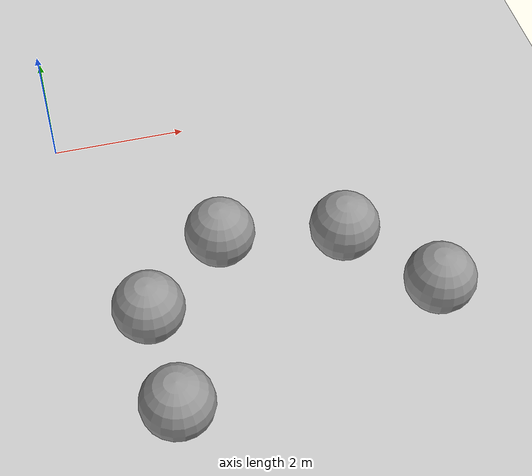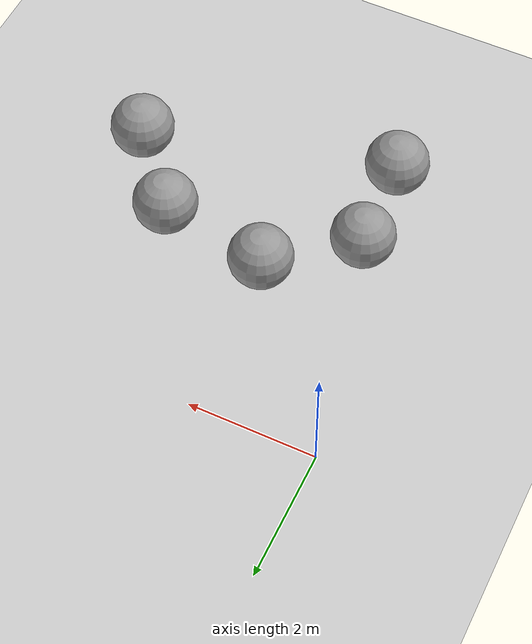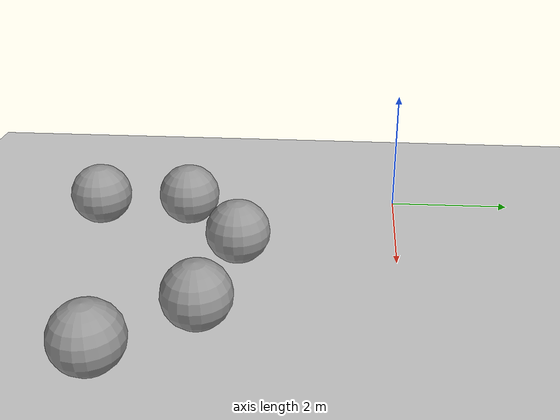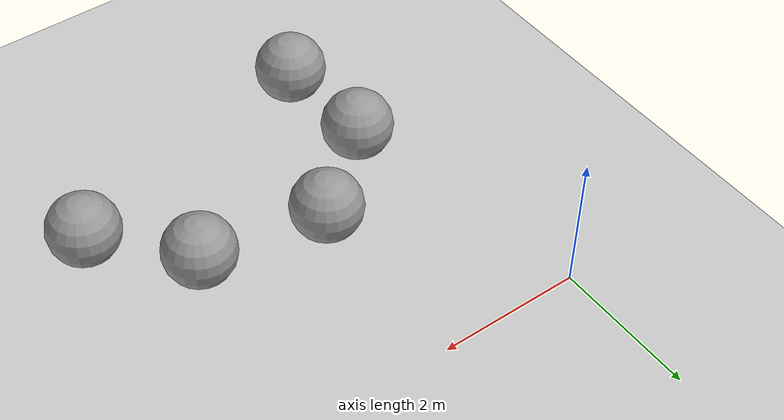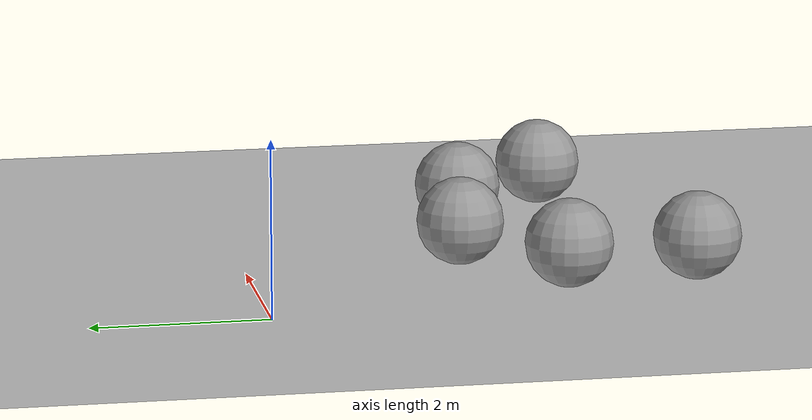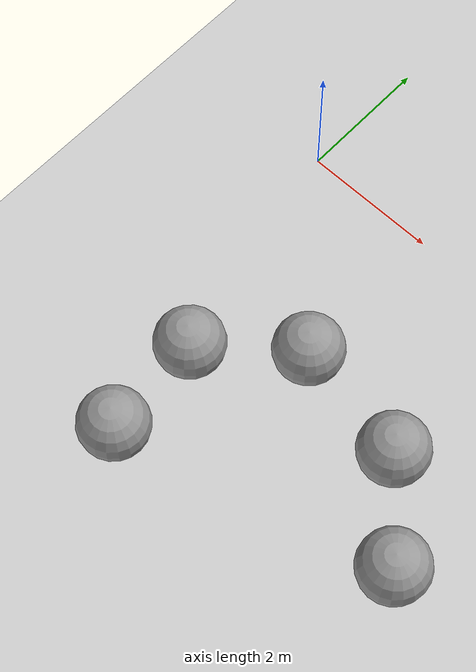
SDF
<sdf version="1.7">
 <world name="default">
  <model name="ground_plane">
   <static>1</static>
   <link name="link">
    <collision name="collision">
     <geometry><plane><normal>0 0 1</normal><size>100 100</size></plane></geometry>
     <surface>
      <contact><collide_bitmask>65535</collide_bitmask></contact>
      <friction><ode><mu>100</mu><mu2>50</mu2></ode></friction>
     </surface>
    </collision>
    <visual name="visual">
     <cast_shadows>0</cast_shadows>
     <geometry><plane><normal>0 0 1</normal><size>100 100</size></plane></geometry>
     <material>
      <script><uri>file://media/materials/scripts/gazebo.material</uri><name>Gazebo/Grey</name></script>
     </material>
    </visual>
   </link>
  </model>
  <light name="sun" type="directional">
   <pose>0 0 10 0 -0 0</pose>
   <diffuse>0.8 0.8 0.8 1</diffuse>
   <specular>0.2 0.2 0.2 1</specular>
   <attenuation>
    <range>1000</range>
    <constant>0.9</constant>
    <linear>0.01</linear>
    <quadratic>0.001</quadratic>
   </attenuation>
   <direction>-0.5 0.1 -0.9</direction>
   <spot><inner_angle>0</inner_angle><outer_angle>0</outer_angle><falloff>0</falloff></spot>
  </light>
  <gravity>0 0 -9.8</gravity>
  <magnetic_field>6e-06 2.3e-05 -4.2e-05</magnetic_field>
  <atmosphere type="adiabatic"/>
  <physics type="ode">
   <max_step_size>0.001</max_step_size>
   <real_time_factor>1</real_time_factor>
   <real_time_update_rate>1000</real_time_update_rate>
  </physics>
  <scene><ambient>0.4 0.4 0.4 1</ambient><background>0.7 0.7 0.7 1</background><shadows>1</shadows></scene>
  <spherical_coordinates>
   <surface_model>EARTH_WGS84</surface_model>
   <latitude_deg>0</latitude_deg>
   <longitude_deg>0</longitude_deg>
   <elevation>0</elevation>
   <heading_deg>0</heading_deg>
  </spherical_coordinates>
  <model name="unit_sphere">
   <pose>0.923824 -4.97184 0.5 0 -0 0</pose>
   <link name="link">
    <inertial>
     <mass>1</mass>
     <inertia><ixx>0.1</ixx><ixy>0</ixy><ixz>0</ixz><iyy>0.1</iyy><iyz>0</iyz><izz>0.1</izz></inertia>
    </inertial>
    <collision name="collision"><geometry><sphere><radius>0.5</radius></sphere></geometry></collision>
    <visual name="visual">
     <geometry><sphere><radius>0.5</radius></sphere></geometry>
     <material>
      <script><name>Gazebo/Grey</name><uri>file://media/materials/scripts/gazebo.material</uri></script>
     </material>
    </visual>
   </link>
  </model>
  <model name="unit_sphere_0">
   <pose>0.836625 -3.48014 0.5 0 -0 0</pose>
   <link name="link">
    <inertial>
     <mass>1</mass>
     <inertia><ixx>0.1</ixx><ixy>0</ixy><ixz>0</ixz><iyy>0.1</iyy><iyz>0</iyz><izz>0.1</izz></inertia>
    </inertial>
    <collision name="collision"><geometry><sphere><radius>0.5</radius></sphere></geometry></collision>
    <visual name="visual">
     <geometry><sphere><radius>0.5</radius></sphere></geometry>
     <material>
      <script><name>Gazebo/Grey</name><uri>file://media/materials/scripts/gazebo.material</uri></script>
     </material>
    </visual>
   </link>
  </model>
  <model name="unit_sphere_1">
   <pose>2.04872 -2.47425 0.5 0 -0 0</pose>
   <link name="link">
    <inertial>
     <mass>1</mass>
     <inertia><ixx>0.1</ixx><ixy>0</ixy><ixz>0</ixz><iyy>0.1</iyy><iyz>0</iyz><izz>0.1</izz></inertia>
    </inertial>
    <collision name="collision"><geometry><sphere><radius>0.5</radius></sphere></geometry></collision>
    <visual name="visual">
     <geometry><sphere><radius>0.5</radius></sphere></geometry>
     <material>
      <script><name>Gazebo/Grey</name><uri>file://media/materials/scripts/gazebo.material</uri></script>
     </material>
    </visual>
   </link>
  </model>
  <model name="unit_sphere_2">
   <pose>3.79246 -2.77415 0.5 0 -0 0</pose>
   <link name="link">
    <inertial>
     <mass>1</mass>
     <inertia><ixx>0.1</ixx><ixy>0</ixy><ixz>0</ixz><iyy>0.1</iyy><iyz>0</iyz><izz>0.1</izz></inertia>
    </inertial>
    <collision name="collision"><geometry><sphere><radius>0.5</radius></sphere></geometry></collision>
    <visual name="visual">
     <geometry><sphere><radius>0.5</radius></sphere></geometry>
     <material>
      <script><name>Gazebo/Grey</name><uri>file://media/materials/scripts/gazebo.material</uri></script>
     </material>
    </visual>
   </link>
  </model>
  <model name="unit_sphere_3">
   <pose>4.79912 -3.94327 0.5 0 -0 0</pose>
   <link name="link">
    <inertial>
     <mass>1</mass>
     <inertia><ixx>0.1</ixx><ixy>0</ixy><ixz>0</ixz><iyy>0.1</iyy><iyz>0</iyz><izz>0.1</izz></inertia>
    </inertial>
    <collision name="collision"><geometry><sphere><radius>0.5</radius></sphere></geometry></collision>
    <visual name="visual">
     <geometry><sphere><radius>0.5</radius></sphere></geometry>
     <material>
      <script><name>Gazebo/Grey</name><uri>file://media/materials/scripts/gazebo.material</uri></script>
     </material>
    </visual>
   </link>
  </model>
 </world>
</sdf>
